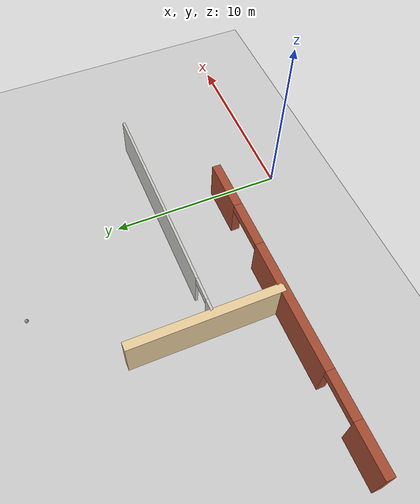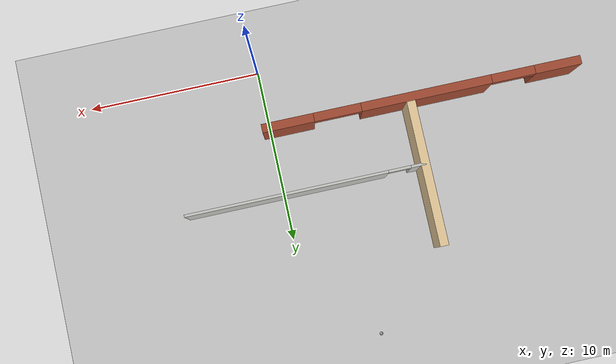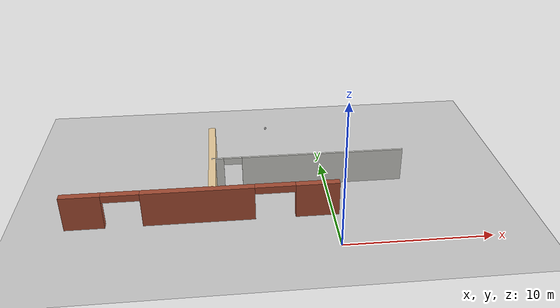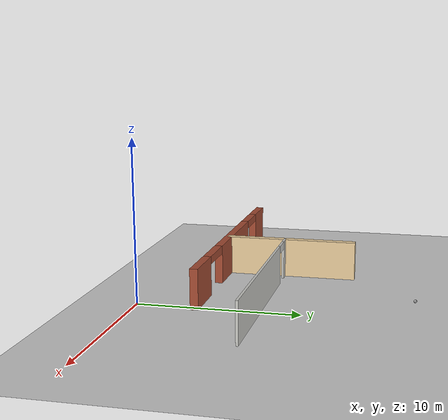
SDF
<sdf version="1.6">
 <world name="default">
  <model name="ground_plane">
   <static>1</static>
   <link name="link">
    <collision name="collision">
     <geometry><plane><normal>0 0 1</normal><size>100 100</size></plane></geometry>
     <surface><friction><ode><mu>100</mu><mu2>50</mu2></ode></friction></surface>
    </collision>
    <visual name="visual">
     <cast_shadows>0</cast_shadows>
     <geometry><plane><normal>0 0 1</normal><size>100 100</size></plane></geometry>
     <material>
      <script><uri>file://media/materials/scripts/gazebo.material</uri><name>Gazebo/Grey</name></script>
     </material>
    </visual>
   </link>
  </model>
  <model name="Building">
   <pose>-1.26631 -0.299272 0 0 -0 0</pose>
   <link name="Wall_47">
    <pose>-7.52262 3.97255 0 0 -0 0</pose>
    <visual name="Wall_47_Visual_0">
     <pose>-7.84772 0 1.25 0 -0 0</pose>
     <geometry><box><size>2.65456 0.5 2.5</size></box></geometry>
     <material>
      <script><uri>file://media/materials/scripts/gazebo.material</uri><name>Gazebo/Bricks</name></script>
      <ambient>1 1 1 1</ambient>
     </material>
     <meta><layer>0</layer></meta>
    </visual>
    <collision name="Wall_47_Collision_0">
     <geometry><box><size>2.65456 0.5 2.5</size></box></geometry>
     <pose>-7.84772 0 1.25 0 -0 0</pose>
    </collision>
    <visual name="Wall_47_Visual_1">
     <pose>-0.271347 0 1.25 0 -0 0</pose>
     <geometry><box><size>7.49818 0.5 2.5</size></box></geometry>
     <material>
      <script><uri>file://media/materials/scripts/gazebo.material</uri><name>Gazebo/Bricks</name></script>
      <ambient>1 1 1 1</ambient>
     </material>
     <meta><layer>0</layer></meta>
    </visual>
    <collision name="Wall_47_Collision_1">
     <geometry><box><size>7.49818 0.5 2.5</size></box></geometry>
     <pose>-0.271347 0 1.25 0 -0 0</pose>
    </collision>
    <visual name="Wall_47_Visual_2">
     <pose>7.68773 0 1.25 0 -0 0</pose>
     <geometry><box><size>2.97454 0.5 2.5</size></box></geometry>
     <material>
      <script><uri>file://media/materials/scripts/gazebo.material</uri><name>Gazebo/Bricks</name></script>
      <ambient>1 1 1 1</ambient>
     </material>
     <meta><layer>0</layer></meta>
    </visual>
    <collision name="Wall_47_Collision_2">
     <geometry><box><size>2.97454 0.5 2.5</size></box></geometry>
     <pose>7.68773 0 1.25 0 -0 0</pose>
    </collision>
    <visual name="Wall_47_Visual_3">
     <pose>-5.27044 0 2.25 0 -0 0</pose>
     <geometry><box><size>2.5 0.5 0.5</size></box></geometry>
     <material>
      <script><uri>file://media/materials/scripts/gazebo.material</uri><name>Gazebo/Bricks</name></script>
      <ambient>1 1 1 1</ambient>
     </material>
     <meta><layer>0</layer></meta>
    </visual>
    <collision name="Wall_47_Collision_3">
     <geometry><box><size>2.5 0.5 0.5</size></box></geometry>
     <pose>-5.27044 0 2.25 0 -0 0</pose>
    </collision>
    <visual name="Wall_47_Visual_4">
     <pose>4.8391 0 2.25 0 -0 0</pose>
     <geometry><box><size>2.72272 0.5 0.5</size></box></geometry>
     <material>
      <script><uri>file://media/materials/scripts/gazebo.material</uri><name>Gazebo/Bricks</name></script>
      <ambient>1 1 1 1</ambient>
     </material>
     <meta><layer>0</layer></meta>
    </visual>
    <collision name="Wall_47_Collision_4">
     <geometry><box><size>2.72272 0.5 0.5</size></box></geometry>
     <pose>4.8391 0 2.25 0 -0 0</pose>
    </collision>
   </link>
   <link name="Wall_50">
    <collision name="Wall_50_Collision">
     <geometry><box><size>8.59982 0.5 2.5</size></box></geometry>
     <pose>0 0 1.25 0 -0 0</pose>
    </collision>
    <visual name="Wall_50_Visual">
     <pose>0 0 1.25 0 -0 0</pose>
     <geometry><box><size>8.59982 0.5 2.5</size></box></geometry>
     <material>
      <script><uri>file://media/materials/scripts/gazebo.material</uri><name>Gazebo/Grey</name></script>
      <ambient>0.921569 0.807843 0.615686 1</ambient>
     </material>
     <meta><layer>0</layer></meta>
    </visual>
    <pose>-6.83538 8.21676 0 0 0 -1.5708</pose>
   </link>
   <link name="Wall_82">
    <pose>-0.002831 7.83234 0 0 -0 0</pose>
    <visual name="Wall_82_Visual_0">
     <pose>-6.44296 0 1.25 0 -0 0</pose>
     <geometry><box><size>0.864077 0.15 2.5</size></box></geometry>
     <material>
      <script><uri>file://media/materials/scripts/gazebo.material</uri><name>Gazebo/CeilingTiled</name></script>
      <ambient>1 1 1 1</ambient>
     </material>
     <meta><layer>0</layer></meta>
    </visual>
    <collision name="Wall_82_Collision_0">
     <geometry><box><size>0.864077 0.15 2.5</size></box></geometry>
     <pose>-6.44296 0 1.25 0 -0 0</pose>
    </collision>
    <visual name="Wall_82_Visual_1">
     <pose>1.07119 0 1.25 0 -0 0</pose>
     <geometry><box><size>11.6076 0.15 2.5</size></box></geometry>
     <material>
      <script><uri>file://media/materials/scripts/gazebo.material</uri><name>Gazebo/CeilingTiled</name></script>
      <ambient>1 1 1 1</ambient>
     </material>
     <meta><layer>0</layer></meta>
    </visual>
    <collision name="Wall_82_Collision_1">
     <geometry><box><size>11.6076 0.15 2.5</size></box></geometry>
     <pose>1.07119 0 1.25 0 -0 0</pose>
    </collision>
    <visual name="Wall_82_Visual_2">
     <pose>-5.37177 0 2.25 0 -0 0</pose>
     <geometry><box><size>1.2783 0.15 0.5</size></box></geometry>
     <material>
      <script><uri>file://media/materials/scripts/gazebo.material</uri><name>Gazebo/CeilingTiled</name></script>
      <ambient>1 1 1 1</ambient>
     </material>
     <meta><layer>0</layer></meta>
    </visual>
    <collision name="Wall_82_Collision_2">
     <geometry><box><size>1.2783 0.15 0.5</size></box></geometry>
     <pose>-5.37177 0 2.25 0 -0 0</pose>
    </collision>
   </link>
   <static>1</static>
  </model>
  <model name="white_ball">
   <link name="link_0">
    <inertial>
     <mass>1</mass>
     <inertia><ixx>0.1</ixx><ixy>0</ixy><ixz>0</ixz><iyy>0.1</iyy><iyz>0</iyz><izz>0.1</izz></inertia>
    </inertial>
    <visual name="visual">
     <geometry><sphere><radius>0.1</radius></sphere></geometry>
     <material>
      <lighting>1</lighting>
      <script><uri>file://media/materials/scripts/gazebo.material</uri><name>Gazebo/Grey</name></script>
      <shader type="pixel"><normal_map>__default__</normal_map></shader>
      <ambient>1 1 1 1</ambient>
      <diffuse>1 1 1 1</diffuse>
      <specular>1 1 1 1</specular>
      <emissive>1 1 1 1</emissive>
     </material>
    </visual>
    <collision name="collision">
     <geometry><sphere><radius>0.1</radius></sphere></geometry>
     <surface>
      <friction>
       <ode><mu>1</mu><mu2>1</mu2><fdir1>0 0 0</fdir1><slip1>0</slip1><slip2>0</slip2></ode>
       <torsional>
        <coefficient>1</coefficient>
        <patch_radius>0</patch_radius>
        <surface_radius>0</surface_radius>
        <use_patch_radius>1</use_patch_radius>
        <ode><slip>0</slip></ode>
       </torsional>
      </friction>
      <bounce><restitution_coefficient>0</restitution_coefficient><threshold>1e+06</threshold></bounce>
      <contact>
       <collide_without_contact>0</collide_without_contact>
       <collide_without_contact_bitmask>1</collide_without_contact_bitmask>
       <collide_bitmask>1</collide_bitmask>
       <ode>
        <soft_cfm>0</soft_cfm>
        <soft_erp>0.2</soft_erp>
        <kp>1e+13</kp>
        <kd>1</kd>
        <max_vel>0.01</max_vel>
        <min_depth>0</min_depth>
       </ode>
       <bullet>
        <split_impulse>1</split_impulse>
        <split_impulse_penetration_threshold>-0.01</split_impulse_penetration_threshold>
        <soft_cfm>0</soft_cfm>
        <soft_erp>0.2</soft_erp>
        <kp>1e+13</kp>
        <kd>1</kd>
       </bullet>
      </contact>
     </surface>
    </collision>
   </link>
   <static>0</static>
   <pose>-3.78243 16.3511 0.1 0 -0 0</pose>
  </model>
 </world>
</sdf>
